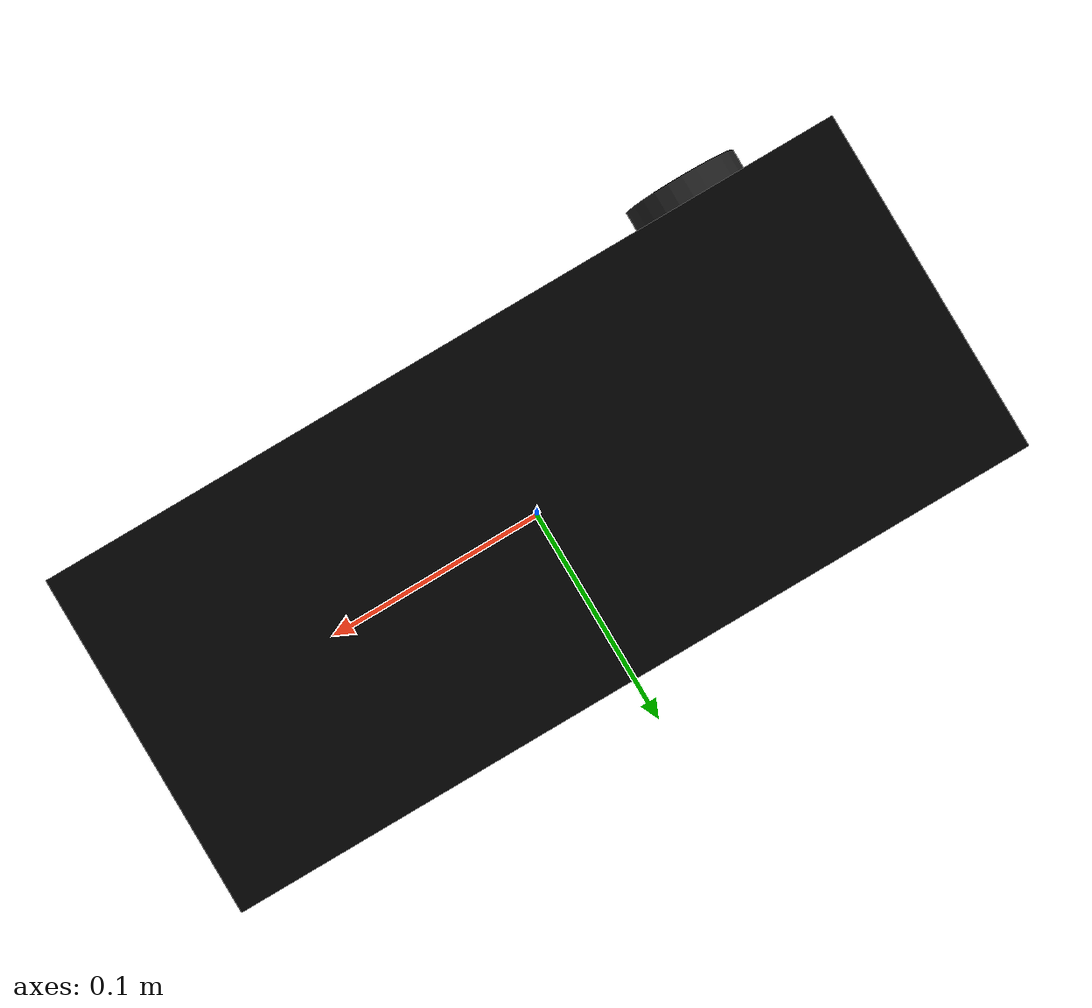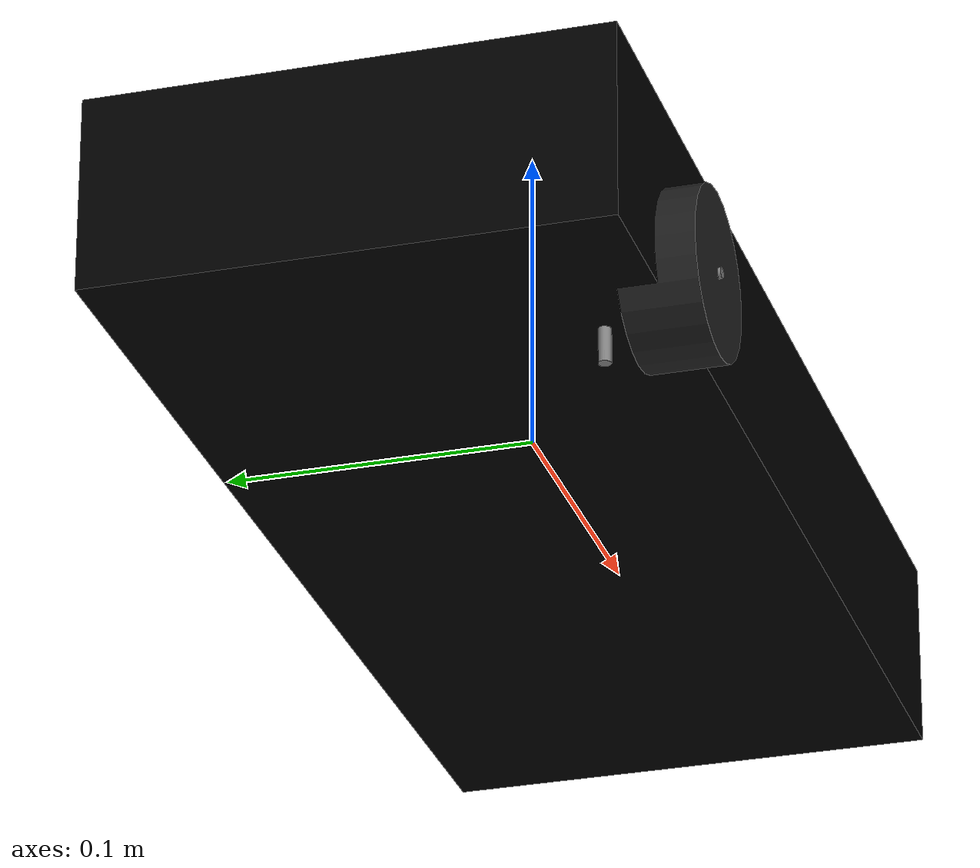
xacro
<?xml version='1.0' encoding='UTF-8'?>

<robot xmlns:xacro="http://www.ros.org/wiki/xacro" name="car">

    <link name="base_link">
        <inertial>
            <origin xyz="0.0 0.0 0.0" rpy="0.0 -0.0 0.0"/>
            <mass value="1.7827"/>
            <inertia ixx="0.0043741515666666664" ixy="0.0" ixz="0.0" iyy="0.022022881566666663" iyz="0.0" izz="0.025254916666666665"/>
        </inertial>
        <visual>
            <geometry>
                <box size="0.01  0.010  0.001"/>
            </geometry>
            <material name="chassis_color"/>
            <origin xyz="0.0 0.0 0.0" rpy="0.0 -0.0 0.0"/>
        </visual>
        <collision name="base_link_collision">
            <geometry>
                <box size="0.01  0.010  0.001"/>
            </geometry>
            <origin xyz="0.0 0.0 0.0" rpy="0.0 -0.0 0.0"/>
        </collision>
    </link>

    <joint name="base_to_chassis_joint" type="fixed">
        <parent link="base_link"/>
        <child link="chassis"/>
        <axis xyz="0. 1. 0."/>
        <origin xyz="0.0 0.0 0.0" rpy="0.0 0.0 0.0"/>
    </joint>

    <link name="chassis">
        <inertial>
            <origin xyz="0.0 0.0 0.0" rpy="0.0 -0.0 0.0"/>
            <mass value="1.7827"/>
            <inertia ixx="0.0043741515666666664" ixy="0.0" ixz="0.0" iyy="0.022022881566666663" iyz="0.0" izz="0.025254916666666665"/>
        </inertial>
        <visual>
            <geometry>
                <box size="0.38  0.16  0.062"/>
            </geometry>
            <material name="chassis_color"/>
            <origin xyz="0.0 0.0 0.0" rpy="0.0 -0.0 0.0"/>
        </visual>
        <collision name="chassis_collision">
            <geometry>
                <box size="0.38  0.16  0.062"/>
            </geometry>
            <origin xyz="0.0 0.0 0.0" rpy="0.0 -0.0 0.0"/>
        </collision>
    </link>

    <link name="right_rear">
        <inertial>
            <origin xyz="0.0 0.0 0.0" rpy="0.0 -0.0 0.0"/>
            <mass value="0.0282"/>
            <inertia ixx="6.3044624999999994e-06" ixy="0.0" ixz="0.0" iyy="6.3044624999999994e-06" iyz="0.0" izz="9.901724999999999e-06"/>
        </inertial>
        <visual>
            <geometry>
                <cylinder radius="0.0265" length="0.024"/>
            </geometry>
            <origin xyz="0.0 0.0 0.0" rpy="0.0 -0.0 0.0"/>
        </visual>
        <collision name="wheel_collision">
            <geometry>
                <cylinder radius="0.0265" length="0.024"/>
            </geometry>
            <origin xyz="0.0 0.0 0.0" rpy="0.0 -0.0 0.0"/>
        </collision>
    </link>
    <link name="right_rear_axle">
        <inertial>
            <origin xyz="0.0 0.0 0.0" rpy="0.0 -0.0 0.0"/>
            <mass value="0.0001"/>
            <inertia ixx="1.0277223333333336e-08" ixy="0.0" ixz="0.0" iyy="1.0277223333333336e-08" iyz="0.0" izz="1.3778000000000001e-10"/>
        </inertial>
        <visual>
            <geometry>
                <cylinder radius="0.00166" length="0.035"/>
            </geometry>
            <material name="axle_color"/>
            <origin xyz="0.0 0.0 0.0" rpy="0.0 -0.0 0.0"/>
        </visual>
        <collision name="right_rear_axle_collision">
            <geometry>
                <cylinder radius="0.00166" length="0.035"/>
            </geometry>
            <origin xyz="0.0 0.0 0.0" rpy="0.0 -0.0 0.0"/>
        </collision>
    </link>
    <link name="right_rear_shock_mount_column">
        <inertial>
            <origin xyz="0.0 0.0 0.0" rpy="0.0 -0.0 0.0"/>
            <mass value="0.0001"/>
            <inertia ixx="1.9540750000000002e-08" ixy="0.0" ixz="0.0" iyy="1.9540750000000002e-08" iyz="0.0" izz="2e-10"/>
        </inertial>
        <visual>
            <geometry>
                <cylinder radius="0.002" length="0.0483"/>
            </geometry>
            <material name="shock_mount_column_color"/>
            <origin xyz="0.0 0.0 0.0" rpy="0.0 -0.0 0.0"/>
        </visual>
        <collision name="right_rear_shock_mount_column_collision">
            <geometry>
                <cylinder radius="0.002" length="0.0483"/>
            </geometry>
            <origin xyz="0.0 0.0 0.0" rpy="0.0 -0.0 0.0"/>
        </collision>
    </link>

    <joint name="chassis_to_right_rear_shock_mount_column_joint" type="fixed">
        <parent link="chassis"/>
        <child link="right_rear_shock_mount_column"/>
        <axis xyz="1. 0. 0."/>
        <origin xyz="-0.125 -0.058 -0.018" rpy="0.0 0.0 -1.5707963267948968"/>
    </joint>
    <joint name="right_rear_to_right_rear_axle_joint" type="revolute">
        <parent link="right_rear_axle"/>
        <child link="right_rear"/>
        <axis xyz="0. 0. 1."/>
        <origin xyz="0.0 0.0 0.004500000000000001" rpy="0.0 0.0 0.0"/>
        <limit lower="-1.57" upper="1.57" effort="100" velocity="1"/>
        <dynamics damping="0.1" friction="0.1"/>
    </joint>

    <joint name="right_rear_axle_to_right_rear_shock_mount_column_joint" type="fixed">
        <parent link="right_rear_shock_mount_column"/>
        <child link="right_rear_axle"/>
        <axis xyz="0. 1. 0."/>
        <origin xyz="0.0175 0.0 0.0" rpy="0.0 1.5707963267948966 0.0"/>
    </joint>
    <transmission name="right_rear_axle_to_right_rear_shock_mount_column_joint_transmission">
        <type>transmission_interface/SimpleTransmission</type>
        <joint name="right_rear_axle_to_right_rear_shock_mount_column_joint">
            <hardwareInterface>hardware_interface/VelocityJointInterface</hardwareInterface>
        </joint>
        <actuator name="right_rear_axle_to_right_rear_shock_mount_column_joint_actuator">
            <hardwareInterface>hardware_interface/VelocityJointInterface</hardwareInterface>
            <mechanicalReduction>1</mechanicalReduction>
        </actuator>
    </transmission>

    <transmission name="right_rear_to_right_rear_axle_joint_transmission">
        <type>transmission_interface/SimpleTransmission</type>
        <joint name="right_rear_to_right_rear_axle_joint">
            <hardwareInterface>hardware_interface/VelocityJointInterface</hardwareInterface>
        </joint>
        <actuator name="right_rear_to_right_rear_axle_joint_actuator">
            <hardwareInterface>hardware_interface/VelocityJointInterface</hardwareInterface>
            <mechanicalReduction>1</mechanicalReduction>
        </actuator>
    </transmission>

    <material name="axle_color">
        <color rgba="0.5 0.5 0.5 1. "/>
    </material>
    <material name="shock_mount_column_color">
        <color rgba="0.5 0.5 0.5 1. "/>
    </material>
    <material name="chassis_color">
        <color rgba="0. 0. 0. 1."/>
    </material>

    <!-- Gazebo plugin for ROS Control -->
    <gazebo>
        <plugin name="gazebo_ros_control" filename="libgazebo_ros_control.so">
            <robotNamespace>/car</robotNamespace>
            <robotSimType>gazebo_ros_control/DefaultRobotHWSim</robotSimType>
            <legacyModeNS>true</legacyModeNS>
        </plugin>
    </gazebo>
    <gazebo reference="right_rear">
        <material>Gazebo/Black</material>
    </gazebo>
    <gazebo reference="chassis">
        <material>Gazebo/White</material>
    </gazebo>
</robot>
